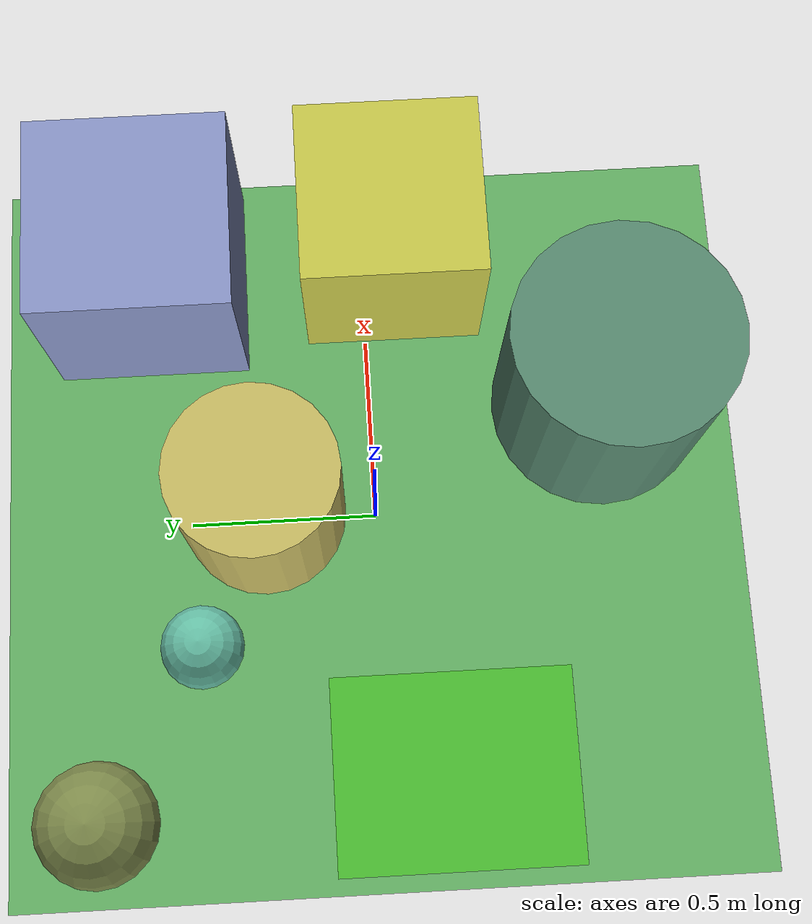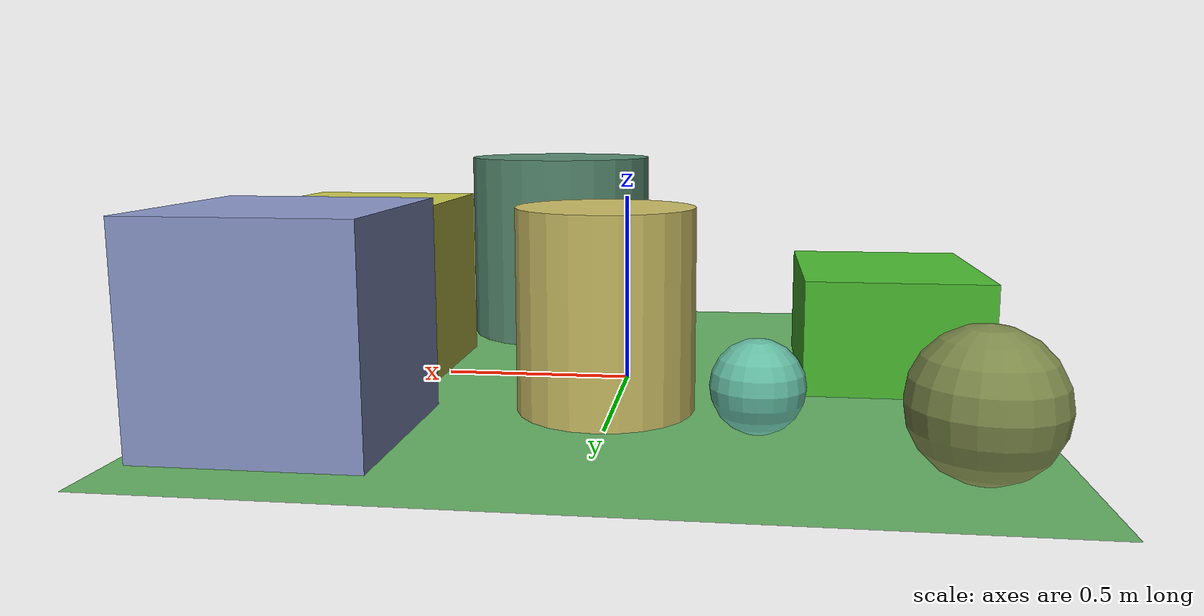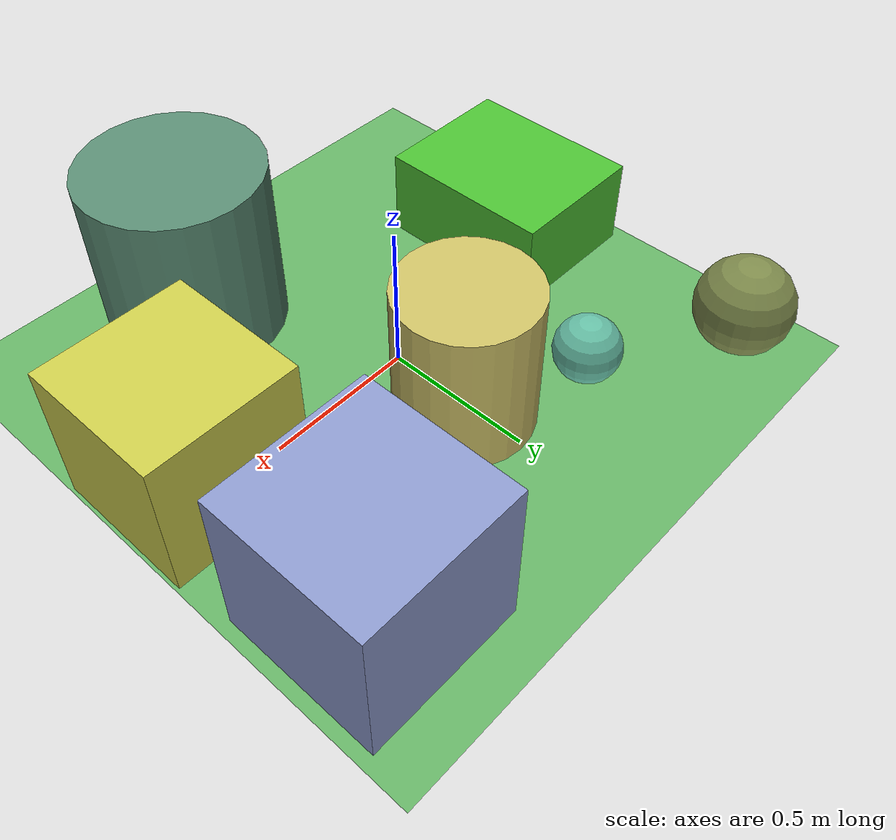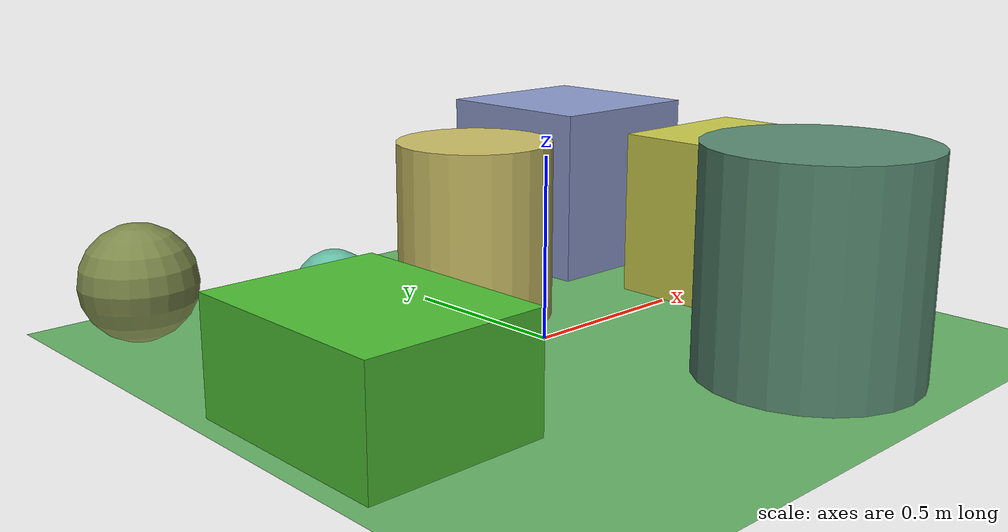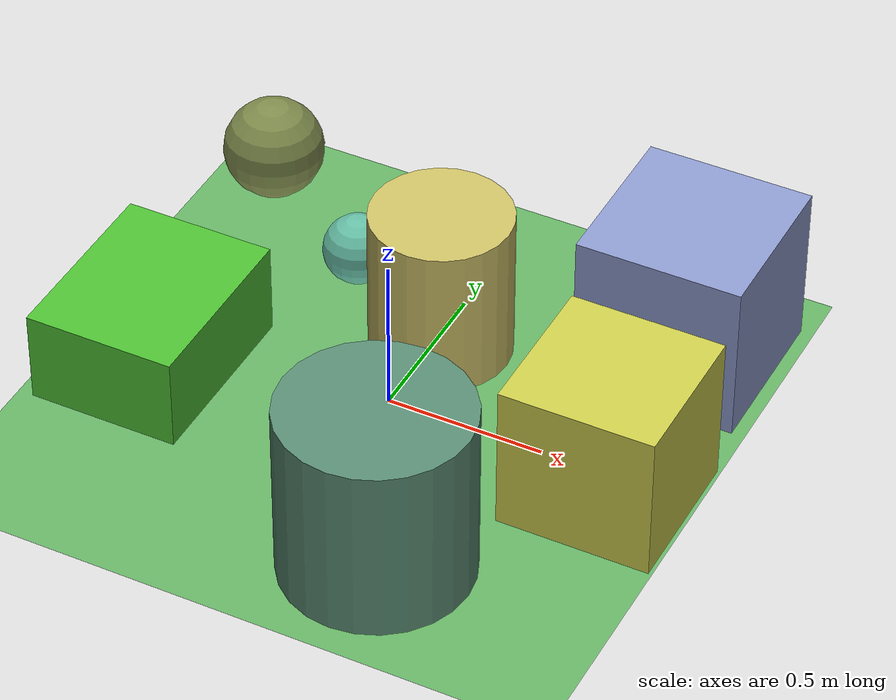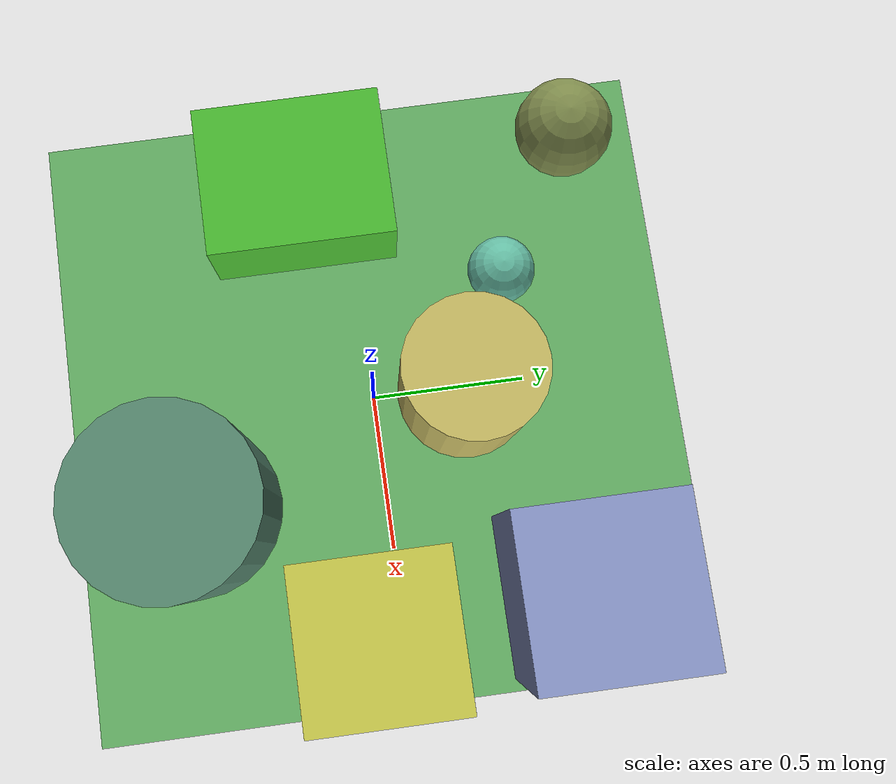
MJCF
<mujoco>
   <asset>
<texture type="skybox" builtin="gradient" rgb1="0.7 0.5 0.9" rgb2="0.2 0.1 0.9" width="256" height="256"/>
<texture name="gradient_0" builtin="gradient" rgb1="0.1 0.7 0.0" rgb2="0.5 0.8 0.4" width="200" height="200"/>
<texture name="gradient_1" builtin="gradient" rgb1="0.7 0.8 0.8" rgb2="0.4 0.4 0.8" width="200" height="200"/>
<texture name="gradient_2" builtin="gradient" rgb1="0.7 0.9 0.4" rgb2="0.1 0.6 0.9" width="200" height="200"/>
<texture name="checker_3" builtin="checker" type="2d" rgb1="0.1 0.4 0.4" rgb2="0.6 0.7 0.5" width="200" height="200"/>
<texture name="gradient_4" builtin="gradient" rgb1="0.5 0.9 0.3" rgb2="0.5 0.2 0.3" width="200" height="200"/>
<texture name="checker_5" builtin="checker" type="2d" rgb1="0.9 0.6 0.6" rgb2="0.7 0.9 0.2" width="200" height="200"/>
<texture name="gradient_6" builtin="gradient" rgb1="0.9 0.7 0.6" rgb2="0.7 0.9 0.0" width="200" height="200"/><material name="gradient_0_mat" reflectance="0" texture="gradient_0" texuniform="true"/>
<material name="gradient_1_mat" reflectance="0" texture="gradient_1" texuniform="true"/>
<material name="gradient_2_mat" reflectance="0" texture="gradient_2" texuniform="true"/>
<material name="checker_3_mat" reflectance="0" texrepeat="6 6" texture="checker_3" texuniform="false" />
<material name="gradient_4_mat" reflectance="0" texture="gradient_4" texuniform="true"/>
<material name="checker_5_mat" reflectance="0" texrepeat="8 8" texture="checker_5" texuniform="false" />
<material name="gradient_6_mat" reflectance="0" texture="gradient_6" texuniform="true"/>
   </asset>

   <worldbody>
      <light diffuse=".9 .9 .9" pos="0 0 3" dir="0 0 -1"/>
     <geom type="plane" size="1 1 0.1" rgba="0.4 0.7 0.4 1"/>
<geom type="box" pos="-0.71 -0.16 0.15" size="0.24 0.3 0.15" material="gradient_0_mat" />
<geom type="box" pos="0.7 0.59 0.26" size="0.26 0.26 0.26" material="gradient_1_mat" />
<geom type="sphere" pos="-0.35 0.47 0.11" size="0.11 0.11 0.11" material="gradient_2_mat" />
<geom type="cylinder" pos="0.29 -0.63 0.29" size="0.29 0.29 0.29" material="checker_3_mat" />
<geom type="sphere" pos="-0.79 0.74 0.16" size="0.16 0.16 0.16" material="gradient_4_mat" />
<geom type="cylinder" pos="0.02 0.3 0.25" size="0.22 0.25 0.25" material="checker_5_mat" />
<geom type="box" pos="0.75 -0.08 0.24" size="0.24 0.24 0.24" material="gradient_6_mat" /><camera euler="60 0 180" fovy="60" name="camera_a" pos="0 -1.5 1"></camera>   </worldbody>
</mujoco>
